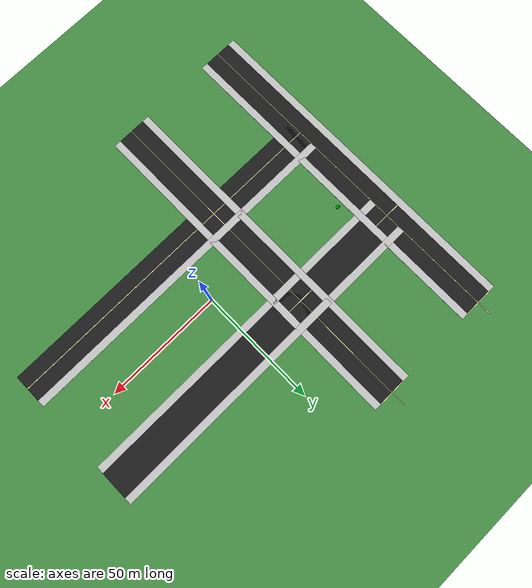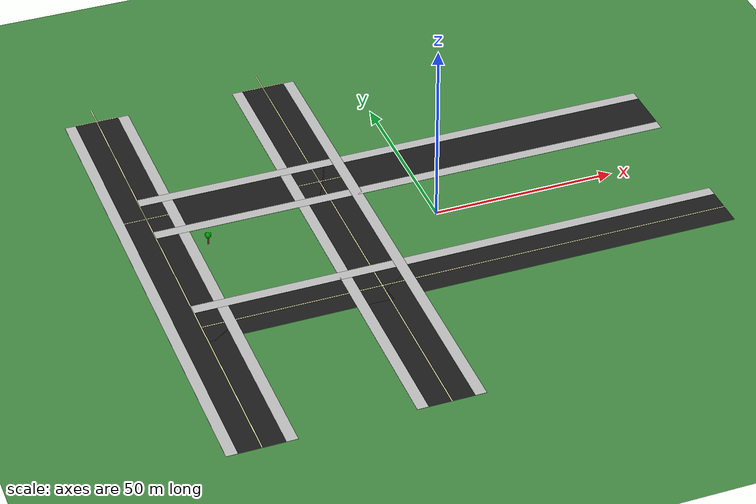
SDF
<sdf version="1.9">
 <world name="earthquake">
  <model name="ground_plane">
   <static>true</static>
   <link name="link">
    <collision name="collision">
     <geometry><plane><normal>0 0 1</normal><size>1000 1000</size></plane></geometry>
    </collision>
    <visual name="visual">
     <geometry><plane><normal>0 0 1</normal><size>1000 1000</size></plane></geometry>
     <material><ambient>0.25 0.52 0.25 1</ambient><diffuse>0.25 0.52 0.25 1</diffuse></material>
    </visual>
   </link>
  </model>
  <model name="hroad_1">
   <static>true</static>
   <pose>0.00 -24.00 0.010 0 0 0</pose>
   <link name="link">
    <visual name="visual">
     <geometry><box><size>144.000 12.000 0.020</size></box></geometry>
     <material><ambient>0.10 0.10 0.10 1</ambient><diffuse>0.10 0.10 0.10 1</diffuse></material>
    </visual>
   </link>
  </model>
  <model name="hside_top_1">
   <static>true</static>
   <pose>0.00 -16.50 0.030 0 0 0</pose>
   <link name="link">
    <visual name="visual">
     <geometry><box><size>144.000 3.000 0.060</size></box></geometry>
     <material><ambient>0.72 0.72 0.72 1</ambient><diffuse>0.72 0.72 0.72 1</diffuse></material>
    </visual>
   </link>
  </model>
  <model name="hline_1">
   <static>true</static>
   <pose>0.00 -24.00 0.041 0 0 0</pose>
   <link name="link">
    <visual name="visual">
     <geometry><box><size>144.000 0.300 0.005</size></box></geometry>
     <material><ambient>0.95 0.95 0.70 1</ambient><diffuse>0.95 0.95 0.70 1</diffuse></material>
    </visual>
   </link>
  </model>
  <model name="hroad_2">
   <static>true</static>
   <pose>0.00 24.00 0.010 0 0 0</pose>
   <link name="link">
    <visual name="visual">
     <geometry><box><size>144.000 12.000 0.020</size></box></geometry>
     <material><ambient>0.10 0.10 0.10 1</ambient><diffuse>0.10 0.10 0.10 1</diffuse></material>
    </visual>
   </link>
  </model>
  <model name="hside_top_2">
   <static>true</static>
   <pose>0.00 31.50 0.030 0 0 0</pose>
   <link name="link">
    <visual name="visual">
     <geometry><box><size>144.000 3.000 0.060</size></box></geometry>
     <material><ambient>0.72 0.72 0.72 1</ambient><diffuse>0.72 0.72 0.72 1</diffuse></material>
    </visual>
   </link>
  </model>
  <model name="hside_bottom_2">
   <static>true</static>
   <pose>0.00 16.50 0.030 0 0 0</pose>
   <link name="link">
    <visual name="visual">
     <geometry><box><size>144.000 3.000 0.060</size></box></geometry>
     <material><ambient>0.72 0.72 0.72 1</ambient><diffuse>0.72 0.72 0.72 1</diffuse></material>
    </visual>
   </link>
  </model>
  <model name="vroad_0">
   <static>true</static>
   <pose>-72.00 0.00 0.010 0 0 0</pose>
   <link name="link">
    <visual name="visual">
     <geometry><box><size>12.000 144.000 0.020</size></box></geometry>
     <material><ambient>0.10 0.10 0.10 1</ambient><diffuse>0.10 0.10 0.10 1</diffuse></material>
    </visual>
   </link>
  </model>
  <model name="vside_left_0">
   <static>true</static>
   <pose>-79.50 0.00 0.030 0 0 0</pose>
   <link name="link">
    <visual name="visual">
     <geometry><box><size>3.000 144.000 0.060</size></box></geometry>
     <material><ambient>0.72 0.72 0.72 1</ambient><diffuse>0.72 0.72 0.72 1</diffuse></material>
    </visual>
   </link>
  </model>
  <model name="vside_right_0">
   <static>true</static>
   <pose>-64.50 0.00 0.030 0 0 0</pose>
   <link name="link">
    <visual name="visual">
     <geometry><box><size>3.000 144.000 0.060</size></box></geometry>
     <material><ambient>0.72 0.72 0.72 1</ambient><diffuse>0.72 0.72 0.72 1</diffuse></material>
    </visual>
   </link>
  </model>
  <model name="vline_0">
   <static>true</static>
   <pose>-72.00 0.00 0.041 0 0 0</pose>
   <link name="link">
    <visual name="visual">
     <geometry><box><size>0.300 144.000 0.005</size></box></geometry>
     <material><ambient>0.95 0.95 0.70 1</ambient><diffuse>0.95 0.95 0.70 1</diffuse></material>
    </visual>
   </link>
  </model>
  <model name="vroad_1">
   <static>true</static>
   <pose>-24.00 0.00 0.010 0 0 0</pose>
   <link name="link">
    <visual name="visual">
     <geometry><box><size>12.000 144.000 0.020</size></box></geometry>
     <material><ambient>0.10 0.10 0.10 1</ambient><diffuse>0.10 0.10 0.10 1</diffuse></material>
    </visual>
   </link>
  </model>
  <model name="vside_left_1">
   <static>true</static>
   <pose>-31.50 0.00 0.030 0 0 0</pose>
   <link name="link">
    <visual name="visual">
     <geometry><box><size>3.000 144.000 0.060</size></box></geometry>
     <material><ambient>0.72 0.72 0.72 1</ambient><diffuse>0.72 0.72 0.72 1</diffuse></material>
    </visual>
   </link>
  </model>
  <model name="vside_right_1">
   <static>true</static>
   <pose>-16.50 0.00 0.030 0 0 0</pose>
   <link name="link">
    <visual name="visual">
     <geometry><box><size>3.000 144.000 0.060</size></box></geometry>
     <material><ambient>0.72 0.72 0.72 1</ambient><diffuse>0.72 0.72 0.72 1</diffuse></material>
    </visual>
   </link>
  </model>
  <model name="vline_1">
   <static>true</static>
   <pose>-24.00 0.00 0.041 0 0 0</pose>
   <link name="link">
    <visual name="visual">
     <geometry><box><size>0.300 144.000 0.005</size></box></geometry>
     <material><ambient>0.95 0.95 0.70 1</ambient><diffuse>0.95 0.95 0.70 1</diffuse></material>
    </visual>
   </link>
  </model>
  <model name="intersection_2_0">
   <static>true</static>
   <pose>-72.00 24.00 0.041 0 0 0</pose>
   <link name="link">
    <visual name="visual">
     <geometry><box><size>12.000 0.300 0.005</size></box></geometry>
     <material><ambient>0.95 0.95 0.70 1</ambient><diffuse>0.95 0.95 0.70 1</diffuse></material>
    </visual>
   </link>
  </model>
  <model name="intersection_cross_2_0">
   <static>true</static>
   <pose>-72.00 24.00 0.041 0 0 0</pose>
   <link name="link">
    <visual name="visual">
     <geometry><box><size>0.300 12.000 0.005</size></box></geometry>
     <material><ambient>0.95 0.95 0.70 1</ambient><diffuse>0.95 0.95 0.70 1</diffuse></material>
    </visual>
   </link>
  </model>
  <model name="intersection_2_1">
   <static>true</static>
   <pose>-24.00 24.00 0.041 0 0 0</pose>
   <link name="link">
    <visual name="visual">
     <geometry><box><size>12.000 0.300 0.005</size></box></geometry>
     <material><ambient>0.95 0.95 0.70 1</ambient><diffuse>0.95 0.95 0.70 1</diffuse></material>
    </visual>
   </link>
  </model>
  <model name="intersection_cross_2_1">
   <static>true</static>
   <pose>-24.00 24.00 0.041 0 0 0</pose>
   <link name="link">
    <visual name="visual">
     <geometry><box><size>0.300 12.000 0.005</size></box></geometry>
     <material><ambient>0.95 0.95 0.70 1</ambient><diffuse>0.95 0.95 0.70 1</diffuse></material>
    </visual>
   </link>
  </model>
  <model name="intersection_3_0">
   <static>true</static>
   <pose>-72.00 72.00 0.041 0 0 0</pose>
   <link name="link">
    <visual name="visual">
     <geometry><box><size>12.000 0.300 0.005</size></box></geometry>
     <material><ambient>0.95 0.95 0.70 1</ambient><diffuse>0.95 0.95 0.70 1</diffuse></material>
    </visual>
   </link>
  </model>
  <model name="intersection_cross_3_0">
   <static>true</static>
   <pose>-72.00 72.00 0.041 0 0 0</pose>
   <link name="link">
    <visual name="visual">
     <geometry><box><size>0.300 12.000 0.005</size></box></geometry>
     <material><ambient>0.95 0.95 0.70 1</ambient><diffuse>0.95 0.95 0.70 1</diffuse></material>
    </visual>
   </link>
  </model>
  <model name="intersection_3_1">
   <static>true</static>
   <pose>-24.00 72.00 0.041 0 0 0</pose>
   <link name="link">
    <visual name="visual">
     <geometry><box><size>12.000 0.300 0.005</size></box></geometry>
     <material><ambient>0.95 0.95 0.70 1</ambient><diffuse>0.95 0.95 0.70 1</diffuse></material>
    </visual>
   </link>
  </model>
  <model name="intersection_cross_3_1">
   <static>true</static>
   <pose>-24.00 72.00 0.041 0 0 0</pose>
   <link name="link">
    <visual name="visual">
     <geometry><box><size>0.300 12.000 0.005</size></box></geometry>
     <material><ambient>0.95 0.95 0.70 1</ambient><diffuse>0.95 0.95 0.70 1</diffuse></material>
    </visual>
   </link>
  </model>
  <model name="tree_1_0_1">
   <static>true</static>
   <pose>-59.96 8.30 0.00 0 0 0</pose>
   <link name="link">
    <visual name="trunk">
     <pose>0 0 1.25 0 0 0</pose>
     <geometry><cylinder><radius>0.2</radius><length>2.5</length></cylinder></geometry>
     <material><ambient>0.45 0.25 0.1 1</ambient><diffuse>0.45 0.25 0.1 1</diffuse></material>
    </visual>
    <visual name="leaves1">
     <pose>0 0 2.75 0 0 0</pose>
     <geometry><sphere><radius>0.8</radius></sphere></geometry>
     <material><ambient>0.0 0.6 0.0 1</ambient><diffuse>0.0 0.6 0.0 1</diffuse></material>
    </visual>
    <visual name="leaves2">
     <pose>0.3 0 2.95 0 0 0</pose>
     <geometry><sphere><radius>0.6</radius></sphere></geometry>
     <material><ambient>0.0 0.7 0.0 1</ambient><diffuse>0.0 0.7 0.0 1</diffuse></material>
    </visual>
    <visual name="leaves3">
     <pose>-0.3 0.2 2.85 0 0 0</pose>
     <geometry><sphere><radius>0.6</radius></sphere></geometry>
     <material><ambient>0.0 0.5 0.0 1</ambient><diffuse>0.0 0.5 0.0 1</diffuse></material>
    </visual>
   </link>
  </model>
 </world>
</sdf>
